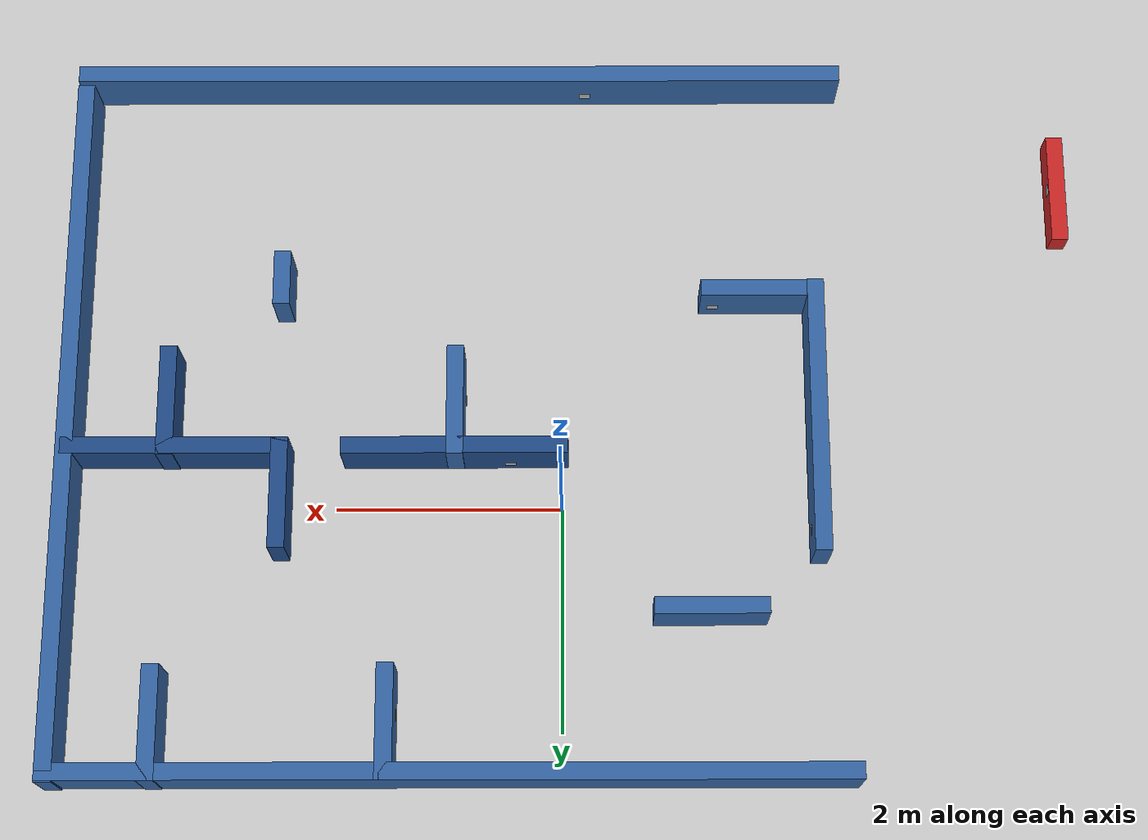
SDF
<?xml version="1.0"?>
<sdf version="1.6">
    <world name="default">

        <include>
            <uri>model://ground_plane</uri>
        </include>

        <include>
            <uri>model://sun</uri>
        </include>

        <scene>
            <shadows>false</shadows>
        </scene>

        <gui fullscreen='0'>
            <camera name='user_camera'>
                <pose>-2.4268 7.4861 6.18945 0 0.6698 -1.35041</pose>
                <view_controller>orbit</view_controller>
                <projection_type>perspective</projection_type>
            </camera>
        </gui>

        <physics type="ode">
            <real_time_update_rate>1000.0</real_time_update_rate>
            <max_step_size>0.001</max_step_size>
            <real_time_factor>1</real_time_factor>
            <ode>
                <solver>
                    <type>quick</type>
                    <iters>150</iters>
                    <precon_iters>0</precon_iters>
                    <sor>1.400000</sor>
                    <use_dynamic_moi_rescaling>1</use_dynamic_moi_rescaling>
                </solver>
                <constraints>
                    <cfm>0.00001</cfm>
                    <erp>0.2</erp>
                    <contact_max_correcting_vel>2000.000000</contact_max_correcting_vel>
                    <contact_surface_layer>0.01000</contact_surface_layer>
                </constraints>
            </ode>
        </physics>

        <model name="maze_world">
            <static>1</static>
            <include>
                <uri>model://maze_world</uri>
            </include>
        </model>

        <include>
            <name>turn_right_1</name>
            <uri>model://aruco_marker_0</uri>
            <pose>1.431726 1.870602 0.2 0 0 3.14</pose>
            <scale>0.1 0.1 0.1</scale>
        </include>

        <include>
            <name>turn_right_2</name>
            <uri>model://aruco_marker_0</uri>
            <pose>0.454188 -0.375581 0.2 0 0 1.57</pose>
            <scale>0.1 0.1 0.1</scale>
        </include>

        <include>
            <name>turn_left_1</name>
            <uri>model://aruco_marker_1</uri>
            <pose>-2.192628 0.234480 0.2 0 0 0</pose>
            <scale>0.1 0.1 0.1</scale>
        </include>

        <include>
            <name>turn_left_2</name>
            <uri>model://aruco_marker_1</uri>
            <pose>-1.361128 -1.849961 0.2 0 0 1.57</pose>
            <scale>0.1 0.1 0.1</scale>
        </include>

        <include>
            <name>turn_right_3</name>
            <uri>model://aruco_marker_0</uri>
            <pose>0.855389 -0.973694 0.2 0 0 3.14159</pose>
            <scale>0.1 0.1 0.1</scale>
        </include>

        <include>
            <name>turn_right_4</name>
            <uri>model://aruco_marker_0</uri>
            <pose>-0.210961 -3.943362 0.2 0 0 1.57</pose>
            <scale>0.1 0.1 0.1</scale>
        </include>

        <include>
            <name>stop</name>
            <uri>model://aruco_marker_2</uri>
            <pose>-4.465822 -2.988823 0.2 0 0 0</pose>
            <scale>0.1 0.1 0.1</scale>
        </include>

        <model name='stop_wall'>
            <pose>-4.547145 -2.990103 0 0 -0 1.57</pose>
            <link name='link'>
                <inertial>
                    <mass>1</mass>
                    <inertia>
                        <ixx>0.166667</ixx>
                        <ixy>0</ixy>
                        <ixz>0</ixz>
                        <iyy>0.166667</iyy>
                        <iyz>0</iyz>
                        <izz>0.166667</izz>
                    </inertia>
                    <pose>0 0 0 0 -0 0</pose>
                </inertial>
                <collision name='collision'>
                    <geometry>
                        <box>
                            <size>1 0.15 0.5</size>
                        </box>
                    </geometry>
                    <max_contacts>10</max_contacts>
                    <surface>
                        <contact>
                            <ode />
                        </contact>
                        <bounce />
                        <friction>
                            <torsional>
                                <ode />
                            </torsional>
                            <ode />
                        </friction>
                    </surface>
                </collision>
                <visual name='visual'>
                    <geometry>
                        <box>
                            <size>1 0.15 0.5</size>
                        </box>
                    </geometry>
                    <material>
                        <script>
                            <name>Gazebo/Red</name>
                            <uri>file://media/materials/scripts/gazebo.material</uri>
                        </script>
                    </material>
                </visual>
                <self_collide>0</self_collide>
                <enable_wind>0</enable_wind>
                <kinematic>0</kinematic>
            </link>
        </model>

    </world>
</sdf>

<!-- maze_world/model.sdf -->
<sdf version='1.7'>
  <model name='maze_world'>
    <pose>0.945 -0.532439 0 0 -0 0</pose>
    <link name='Wall_0'>
      <collision name='Wall_0_Collision'>
        <geometry>
          <box>
            <size>7 0.15 0.5</size>
          </box>
        </geometry>
        <pose>0 0 0.25 0 -0 0</pose>
      </collision>
      <visual name='Wall_0_Visual'>
        <pose>0 0 0.25 0 -0 0</pose>
        <geometry>
          <box>
            <size>7 0.15 0.5</size>
          </box>
        </geometry>
        <material>
          <script>
            <uri>file://media/materials/scripts/gazebo.material</uri>
            <name>Gazebo/Grey</name>
          </script>
          <ambient>0.203922 0.396078 0.643137 1</ambient>
        </material>
        <meta>
          <layer>0</layer>
        </meta>
      </visual>
      <pose>-0 2.92244 0 0 -0 0</pose>
    </link>
    <link name='Wall_1'>
      <collision name='Wall_1_Collision'>
        <geometry>
          <box>
            <size>6.4 0.15 0.5</size>
          </box>
        </geometry>
        <pose>0 0 0.25 0 -0 0</pose>
      </collision>
      <visual name='Wall_1_Visual'>
        <pose>0 0 0.25 0 -0 0</pose>
        <geometry>
          <box>
            <size>6.4 0.15 0.5</size>
          </box>
        </geometry>
        <material>
          <script>
            <uri>file://media/materials/scripts/gazebo.material</uri>
            <name>Gazebo/Grey</name>
          </script>
          <ambient>0.203922 0.396078 0.643137 1</ambient>
        </material>
        <meta>
          <layer>0</layer>
        </meta>
      </visual>
      <pose>3.425 -0.19 0 0 -0 -1.5708</pose>
    </link>
    <link name='Wall_10'>
      <collision name='Wall_10_Collision'>
        <geometry>
          <box>
            <size>1 0.15 0.5</size>
          </box>
        </geometry>
        <pose>0 0 0.25 0 -0 0</pose>
      </collision>
      <visual name='Wall_10_Visual'>
        <pose>0 0 0.25 0 -0 0</pose>
        <geometry>
          <box>
            <size>1 0.15 0.5</size>
          </box>
        </geometry>
        <material>
          <script>
            <uri>file://media/materials/scripts/gazebo.material</uri>
            <name>Gazebo/Grey</name>
          </script>
          <ambient>0.203922 0.396078 0.643137 1</ambient>
        </material>
        <meta>
          <layer>0</layer>
        </meta>
      </visual>
      <pose>2.565 2.50256 0 0 -0 1.5708</pose>
    </link>
    <link name='Wall_12'>
      <collision name='Wall_12_Collision'>
        <geometry>
          <box>
            <size>1 0.15 0.5</size>
          </box>
        </geometry>
        <pose>0 0 0.25 0 -0 0</pose>
      </collision>
      <visual name='Wall_12_Visual'>
        <pose>0 0 0.25 0 -0 0</pose>
        <geometry>
          <box>
            <size>1 0.15 0.5</size>
          </box>
        </geometry>
        <material>
          <script>
            <uri>file://media/materials/scripts/gazebo.material</uri>
            <name>Gazebo/Grey</name>
          </script>
          <ambient>0.12549 0.290196 0.529412 1</ambient>
        </material>
        <meta>
          <layer>0</layer>
        </meta>
      </visual>
      <pose>1.535 0.487439 0 0 -0 -1.5708</pose>
    </link>
    <link name='Wall_13'>
      <collision name='Wall_13_Collision'>
        <geometry>
          <box>
            <size>2 0.15 0.5</size>
          </box>
        </geometry>
        <pose>0 0 0.25 0 -0 0</pose>
      </collision>
      <visual name='Wall_13_Visual'>
        <pose>0 0 0.25 0 -0 0</pose>
        <geometry>
          <box>
            <size>2 0.15 0.5</size>
          </box>
        </geometry>
        <material>
          <script>
            <uri>file://media/materials/scripts/gazebo.material</uri>
            <name>Gazebo/Grey</name>
          </script>
          <ambient>0.12549 0.290196 0.529412 1</ambient>
        </material>
        <meta>
          <layer>0</layer>
        </meta>
      </visual>
      <pose>0.0 0.062439 0 0 -0 3.14159</pose>
    </link>
    <link name='Wall_15'>
      <collision name='Wall_15_Collision'>
        <geometry>
          <box>
            <size>2 0.15 0.5</size>
          </box>
        </geometry>
        <pose>0 0 0.25 0 -0 0</pose>
      </collision>
      <visual name='Wall_15_Visual'>
        <pose>0 0 0.25 0 -0 0</pose>
        <geometry>
          <box>
            <size>2 0.15 0.5</size>
          </box>
        </geometry>
        <material>
          <script>
            <uri>file://media/materials/scripts/gazebo.material</uri>
            <name>Gazebo/Grey</name>
          </script>
          <ambient>0.12549 0.290196 0.529412 1</ambient>
        </material>
        <meta>
          <layer>0</layer>
        </meta>
      </visual>
      <pose>2.46 0.062439 0 0 -0 0</pose>
    </link>

    <link name='Wall_19'>
      <collision name='Wall_19_Collision'>
        <geometry>
          <box>
            <size>1 0.15 0.5</size>
          </box>
        </geometry>
        <pose>0 0 0.25 0 -0 0</pose>
      </collision>
      <visual name='Wall_19_Visual'>
        <pose>0 0 0.25 0 -0 0</pose>
        <geometry>
          <box>
            <size>1 0.15 0.5</size>
          </box>
        </geometry>
        <material>
          <script>
            <uri>file://media/materials/scripts/gazebo.material</uri>
            <name>Gazebo/Grey</name>
          </script>
          <ambient>0.12549 0.290196 0.529412 1</ambient>
        </material>
        <meta>
          <layer>0</layer>
        </meta>
      </visual>
      <pose>2.545 -0.357561 0 0 -0 -1.5708</pose>
    </link>
    <link name='Wall_2'>
      <collision name='Wall_2_Collision'>
        <geometry>
          <box>
            <size>7 0.15 0.5</size>
          </box>
        </geometry>
        <pose>0 0 0.25 0 -0 0</pose>
      </collision>
      <visual name='Wall_2_Visual'>
        <pose>0 0 0.25 0 -0 0</pose>
        <geometry>
          <box>
            <size>7 0.15 0.5</size>
          </box>
        </geometry>
        <material>
          <script>
            <uri>file://media/materials/scripts/gazebo.material</uri>
            <name>Gazebo/Grey</name>
          </script>
          <ambient>0.203922 0.396078 0.643137 1</ambient>
        </material>
        <meta>
          <layer>0</layer>
        </meta>
      </visual>
      <pose>-0 -3.5 0 0 -0 3.14159</pose>
    </link>
    <link name='Wall_21'>
      <collision name='Wall_21_Collision'>
        <geometry>
          <box>
            <size>1 0.15 0.5</size>
          </box>
        </geometry>
        <pose>0 0 0.25 0 -0 0</pose>
      </collision>
      <visual name='Wall_21_Visual'>
        <pose>0 0 0.25 0 -0 0</pose>
        <geometry>
          <box>
            <size>1 0.15 0.5</size>
          </box>
        </geometry>
        <material>
          <script>
            <uri>file://media/materials/scripts/gazebo.material</uri>
            <name>Gazebo/Grey</name>
          </script>
          <ambient>0.203922 0.396078 0.643137 1</ambient>
        </material>
        <meta>
          <layer>0</layer>
        </meta>
      </visual>
      <pose>0 -0.357561 0 0 -0 1.5708</pose>
    </link>
    <link name='Wall_23'>
      <collision name='Wall_23_Collision'>
        <geometry>
          <box>
            <size>0.5 0.15 0.5</size>
          </box>
        </geometry>
        <pose>0 0 0.25 0 -0 0</pose>
      </collision>
      <visual name='Wall_23_Visual'>
        <pose>0 0 0.25 0 -0 0</pose>
        <geometry>
          <box>
            <size>0.5 0.15 0.5</size>
          </box>
        </geometry>
        <material>
          <script>
            <uri>file://media/materials/scripts/gazebo.material</uri>
            <name>Gazebo/Grey</name>
          </script>
          <ambient>0.203922 0.396078 0.643137 1</ambient>
        </material>
        <meta>
          <layer>0</layer>
        </meta>
      </visual>
      <pose>1.565 -1.50256 0 0 -0 1.5708</pose>
    </link>
    <link name='Wall_4'>
      <collision name='Wall_4_Collision'>
        <geometry>
          <box>
            <size>1 0.15 0.5</size>
          </box>
        </geometry>
        <pose>0 0 0.25 0 -0 0</pose>
      </collision>
      <visual name='Wall_4_Visual'>
        <pose>0 0 0.25 0 -0 0</pose>
        <geometry>
          <box>
            <size>1 0.15 0.5</size>
          </box>
        </geometry>
        <material>
          <script>
            <uri>file://media/materials/scripts/gazebo.material</uri>
            <name>Gazebo/Grey</name>
          </script>
          <ambient>0.203922 0.396078 0.643137 1</ambient>
        </material>
        <meta>
          <layer>0</layer>
        </meta>
      </visual>
      <pose>-2.24 1.5 0 0 -0 3.14159</pose>
    </link>
    <link name='Wall_5'>
      <collision name='Wall_5_Collision'>
        <geometry>
          <box>
            <size>2.5 0.15 0.5</size>
          </box>
        </geometry>
        <pose>0 0 0.25 0 -0 0</pose>
      </collision>
      <visual name='Wall_5_Visual'>
        <pose>0 0 0.25 0 -0 0</pose>
        <geometry>
          <box>
            <size>2.5 0.15 0.5</size>
          </box>
        </geometry>
        <material>
          <script>
            <uri>file://media/materials/scripts/gazebo.material</uri>
            <name>Gazebo/Grey</name>
          </script>
          <ambient>0.203922 0.396078 0.643137 1</ambient>
        </material>
        <meta>
          <layer>0</layer>
        </meta>
      </visual>
      <pose>-3.215 -0.23 0 0 -0 -1.5708</pose>
    </link>
    <link name='Wall_6'>
      <collision name='Wall_6_Collision'>
        <geometry>
          <box>
            <size>1.0 0.15 0.5</size>
          </box>
        </geometry>
        <pose>0 0 0.25 0 -0 0</pose>
      </collision>
      <visual name='Wall_6_Visual'>
        <pose>0 0 0.25 0 -0 0</pose>
        <geometry>
          <box>
            <size>1.0 0.15 0.5</size>
          </box>
        </geometry>
        <material>
          <script>
            <uri>file://media/materials/scripts/gazebo.material</uri>
            <name>Gazebo/Grey</name>
          </script>
          <ambient>0.203922 0.396078 0.643137 1</ambient>
        </material>
        <meta>
          <layer>0</layer>
        </meta>
      </visual>
      <pose>-2.69 -1.4 0 0 -0 0</pose>
    </link>
    <link name='Wall_8'>
      <collision name='Wall_8_Collision'>
        <geometry>
          <box>
            <size>1 0.15 0.5</size>
          </box>
        </geometry>
        <pose>0 0 0.25 0 -0 0</pose>
      </collision>
      <visual name='Wall_8_Visual'>
        <pose>0 0 0.25 0 -0 0</pose>
        <geometry>
          <box>
            <size>1 0.15 0.5</size>
          </box>
        </geometry>
        <material>
          <script>
            <uri>file://media/materials/scripts/gazebo.material</uri>
            <name>Gazebo/Grey</name>
          </script>
          <ambient>0.203922 0.396078 0.643137 1</ambient>
        </material>
        <meta>
          <layer>0</layer>
        </meta>
      </visual>
      <pose>0.565 2.49496 0 0 -0 1.5708</pose>
    </link>
    <static>1</static>
  </model>
</sdf>

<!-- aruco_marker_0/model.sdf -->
<sdf version="1.6">
  <model name="aruco_marker_0">
    <static>false</static>
    <link name="link">
      <gravity>false</gravity>
      <inertial>
        <pose>0 0 0 0 0 0</pose>
        <mass>0.001</mass>
        <inertia>
          <ixx>3.7499999999999997e-06</ixx>
          <ixy>0.0</ixy>
          <ixz>0.0</ixz>
          <iyy>1.8750008333333333e-06</iyy>
          <iyz>0.0</iyz>
          <izz>1.8750008333333333e-06</izz>
        </inertia>
      </inertial>
      <visual name="front_visual">
        <pose>0.00005 0 0 0 0 0</pose>
        <geometry>
          <box>
            <size>0.0001 0.100 0.100</size>
          </box>
        </geometry>
        <material>
          <script>
            <uri>model://aruco_marker_0/materials/scripts</uri>
            <uri>model://aruco_marker_0/materials/textures</uri>
            <name>aruco_marker_0</name>
          </script>
        </material>
      </visual>
      <!-- Hide the marker from the back -->
      <visual name="rear_visual">
        <pose>-0.00005 0 0 0 0 0</pose>
        <geometry>
          <box>
            <size>0.0001 0.100 0.100</size>
          </box>
        </geometry>
      </visual>
      <collision name="collision">
        <pose>0 0 0 0 0 0</pose>
        <geometry>
          <box>
            <size>0.0001 0.100 0.100</size>
          </box>
        </geometry>
      </collision>
    </link>
  </model>
</sdf>

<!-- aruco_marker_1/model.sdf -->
<sdf version="1.6">
  <model name="aruco_marker_1">
    <static>false</static>
    <link name="link">
      <gravity>false</gravity>
      <inertial>
        <pose>0 0 0 0 0 0</pose>
        <mass>0.001</mass>
        <inertia>
          <ixx>3.7499999999999997e-06</ixx>
          <ixy>0.0</ixy>
          <ixz>0.0</ixz>
          <iyy>1.8750008333333333e-06</iyy>
          <iyz>0.0</iyz>
          <izz>1.8750008333333333e-06</izz>
        </inertia>
      </inertial>
      <visual name="front_visual">
        <pose>0.00005 0 0 0 0 0</pose>
        <geometry>
          <box>
            <size>0.0001 0.100 0.100</size>
          </box>
        </geometry>
        <material>
          <script>
            <uri>model://aruco_marker_1/materials/scripts</uri>
            <uri>model://aruco_marker_1/materials/textures</uri>
            <name>aruco_marker_1</name>
          </script>
        </material>
      </visual>
      <!-- Hide the marker from the back -->
      <visual name="rear_visual">
        <pose>-0.00005 0 0 0 0 0</pose>
        <geometry>
          <box>
            <size>0.0001 0.100 0.100</size>
          </box>
        </geometry>
      </visual>
      <collision name="collision">
        <pose>0 0 0 0 0 0</pose>
        <geometry>
          <box>
            <size>0.0001 0.100 0.100</size>
          </box>
        </geometry>
      </collision>
    </link>
  </model>
</sdf>

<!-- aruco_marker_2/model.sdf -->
<sdf version="1.6">
  <model name="aruco_marker_2">
    <static>false</static>
    <link name="link">
      <gravity>false</gravity>
      <inertial>
        <pose>0 0 0 0 0 0</pose>
        <mass>0.001</mass>
        <inertia>
          <ixx>3.7499999999999997e-06</ixx>
          <ixy>0.0</ixy>
          <ixz>0.0</ixz>
          <iyy>1.8750008333333333e-06</iyy>
          <iyz>0.0</iyz>
          <izz>1.8750008333333333e-06</izz>
        </inertia>
      </inertial>
      <visual name="front_visual">
        <pose>0.00005 0 0 0 0 0</pose>
        <geometry>
          <box>
            <size>0.0001 0.100 0.100</size>
          </box>
        </geometry>
        <material>
          <script>
            <uri>model://aruco_marker_2/materials/scripts</uri>
            <uri>model://aruco_marker_2/materials/textures</uri>
            <name>aruco_marker_2</name>
          </script>
        </material>
      </visual>
      <!-- Hide the marker from the back -->
      <visual name="rear_visual">
        <pose>-0.00005 0 0 0 0 0</pose>
        <geometry>
          <box>
            <size>0.0001 0.100 0.100</size>
          </box>
        </geometry>
      </visual>
      <collision name="collision">
        <pose>0 0 0 0 0 0</pose>
        <geometry>
          <box>
            <size>0.0001 0.100 0.100</size>
          </box>
        </geometry>
      </collision>
    </link>
  </model>
</sdf>
